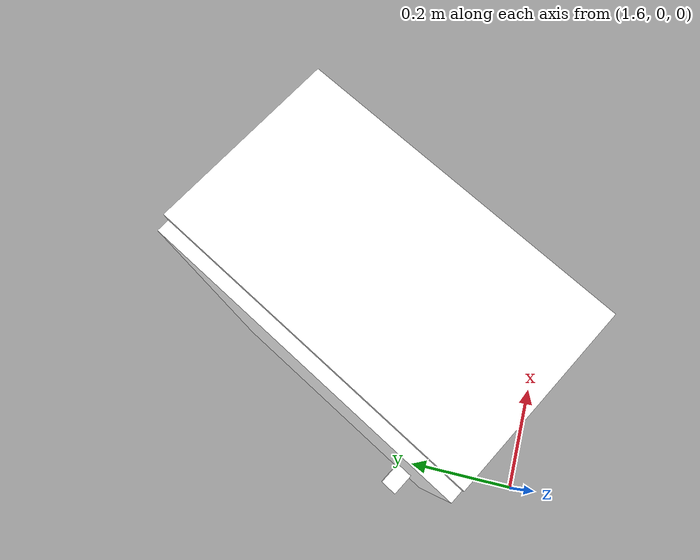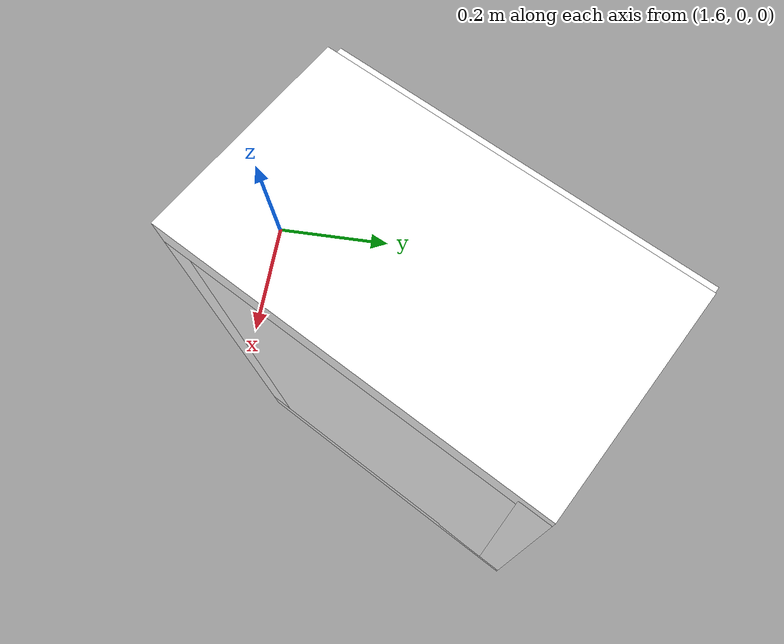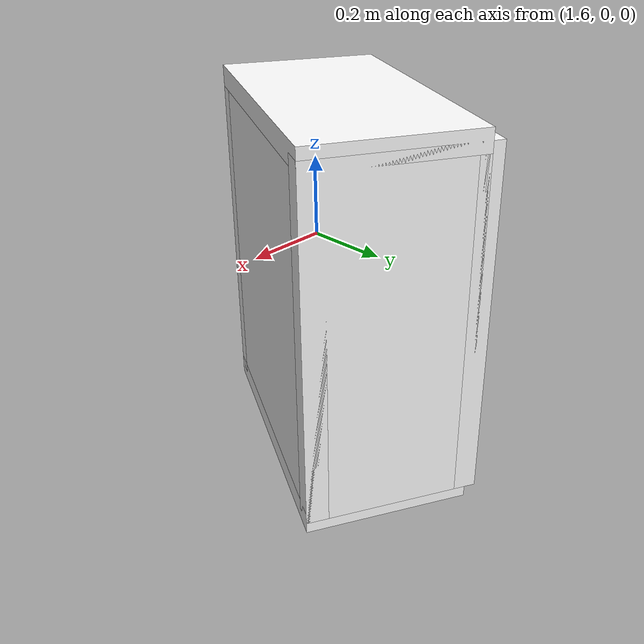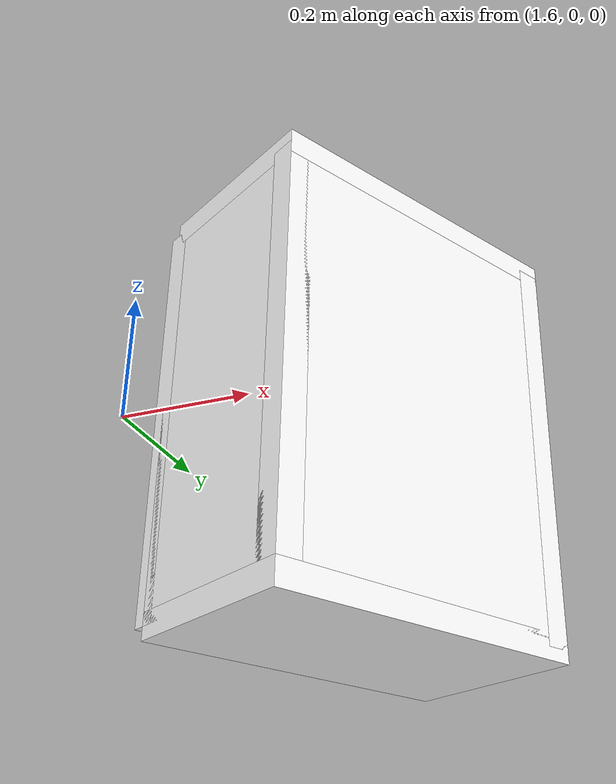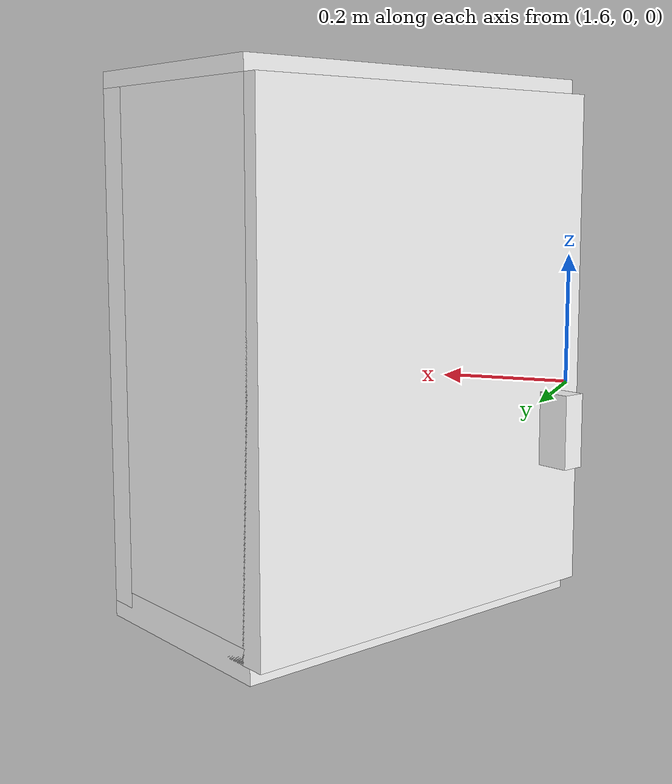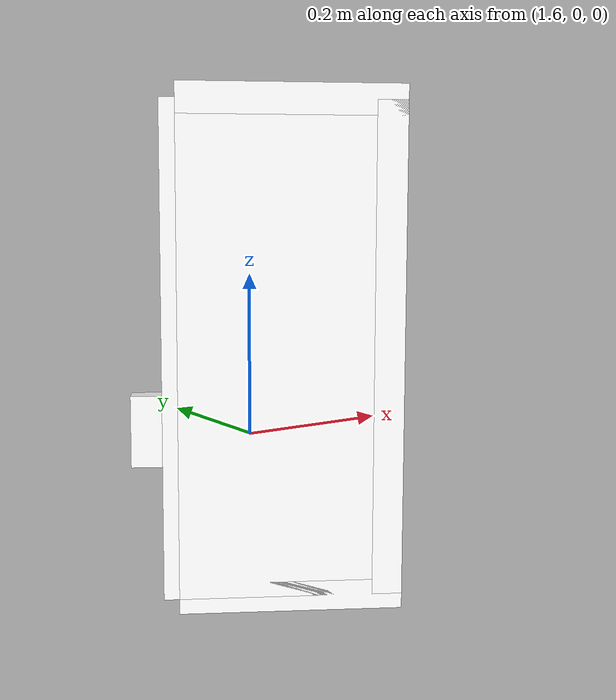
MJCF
<mujoco model="cabinet">
    <compiler angle="radian" eulerseq='zxy' />
    <option gravity = "0 0 0" />
    <option>
        <flag contact = "disable"/>
    </option>
    <statistic	extent="1.0" center="0.0 0.0 0.0"/>
    <visual>
        <map fogstart="3" fogend="5" force="0.1" znear=" 0.100000 " zfar=" 12.000000 "/>
    </visual>
    <size njmax="500" nconmax="100" />
    <actuator>
        <velocity joint="bottom_left_hinge" name="viva_revolution" kv='10'></velocity>
    </actuator>
    <asset>
        <texture builtin="flat" name="tabletex" height="32" width="32" rgb1="1 1 1" type="cube"></texture>
        <texture builtin="flat" name="objtex" height="32" width="32" rgb1="1 1 1" type="cube"></texture>
        <texture builtin="flat" name="handletex" height="32" width="32" rgb1="1 1 1" type="cube"></texture>
        <texture builtin="flat" name="wallpaper" height="32" width="32" rgb1="1 1 1" type="cube"></texture>
        <material name="geomTable" shininess="0.03" specular="0.75" texture="tabletex"></material>
        <material name="geomObj" shininess="0.03" specular="0.75" texture="objtex"></material>
        <material name="geomHandle" shininess="0.03" specular="0.75" texture="handletex"></material>
        <material name="bg" shininess="0.03" specular="0.75" texture="wallpaper"></material>
    </asset>
    <worldbody>
            <body name="cabinet_bottom" pos= " 1.849144 0.317261 -0.263484 "  quat= " 0.249324 0.000000 0.000000 0.968420" >
                <inertial pos="0 0 0" mass="1" diaginertia="1 1 1" />
                <geom size= " 0.159057 0.282191 0.021592 "  type="box" material="geomObj" name="b"/>
                <body name="cabinet_left" pos= " 0.000000 -0.260599 0.348016 " >
                    <inertial pos="0 0 0" mass="1" diaginertia="1 1 1" />
                    <geom size= " 0.159057 0.021592 0.348016 "  type="box" material="geomObj" name="c" />
                </body>
                <body name="cabinet_right" pos= " 0.000000 0.260599 0.348016 " >
                    <inertial pos="0 0 0" mass="1" diaginertia="1 1 1" />
                    <geom size= " 0.159057 0.021592 0.348016 "  type="box" material="geomObj" name="d" />
                </body>
                <body name="cabinet_top" pos= " 0.000000 0.000000 0.696033 " >
                    <inertial pos="0 0 0" mass="1" diaginertia="1 1 1" />
                    <geom size= " 0.159057 0.282191 0.021592 "  type="box" material="geomObj" name="e"/>
                </body>
                <body name="cabinet_back" pos= " -0.137465 0.000000 0.348016 "  >
                    <inertial pos="0 0 0" mass="1" diaginertia="1 1 1" />
                    <geom size= " 0.021592 0.282191 0.348016 "  type="box" material="geomObj" name="f" />
                </body>
                <body name="cabinet_left_hinge" pos= " 0.159057 -0.282191 0.348016 " >
                    <inertial pos= " 0.000000 0.282191 0.000000 "  mass="1" diaginertia="1 1 1" />
                    <joint name="bottom_left_hinge" type="hinge" pos="0 0 0" axis="0 0 1" limited="true" range= "-2.3 0"  />
                    <geom size= " 0.021592 0.282191 0.348016 "  pos= " 0.000000 0.282191 0.000000 "  type="box" material="geomObj" name="g"/>
                    <body name="handle_link" pos= " 0.039764 0.502213 -0.116089 " >
                        <inertial pos="0 0 0" mass="1" diaginertia="1 1 1" />
                        <geom size= " 0.028702 0.017065 0.052024 "  type="box" material="geomHandle" name="h"/>
                    </body>
                </body>
            </body>
        <body name="external_camera_body_0" pos="0.0 0 0.00">
            <camera euler="-1.57 1.57 0.0" fovy=" 54.280851 " name="external_camera_0" pos="0.0 0 0"></camera>
            <inertial pos= " 0.00 0.0 0.000000 " mass="1" diaginertia="1 1 1" />
            <joint name="cam_j" pos="0.0 0 0" axis = "1 0 0" type="free" />
        </body>
    </worldbody>
</mujoco>
